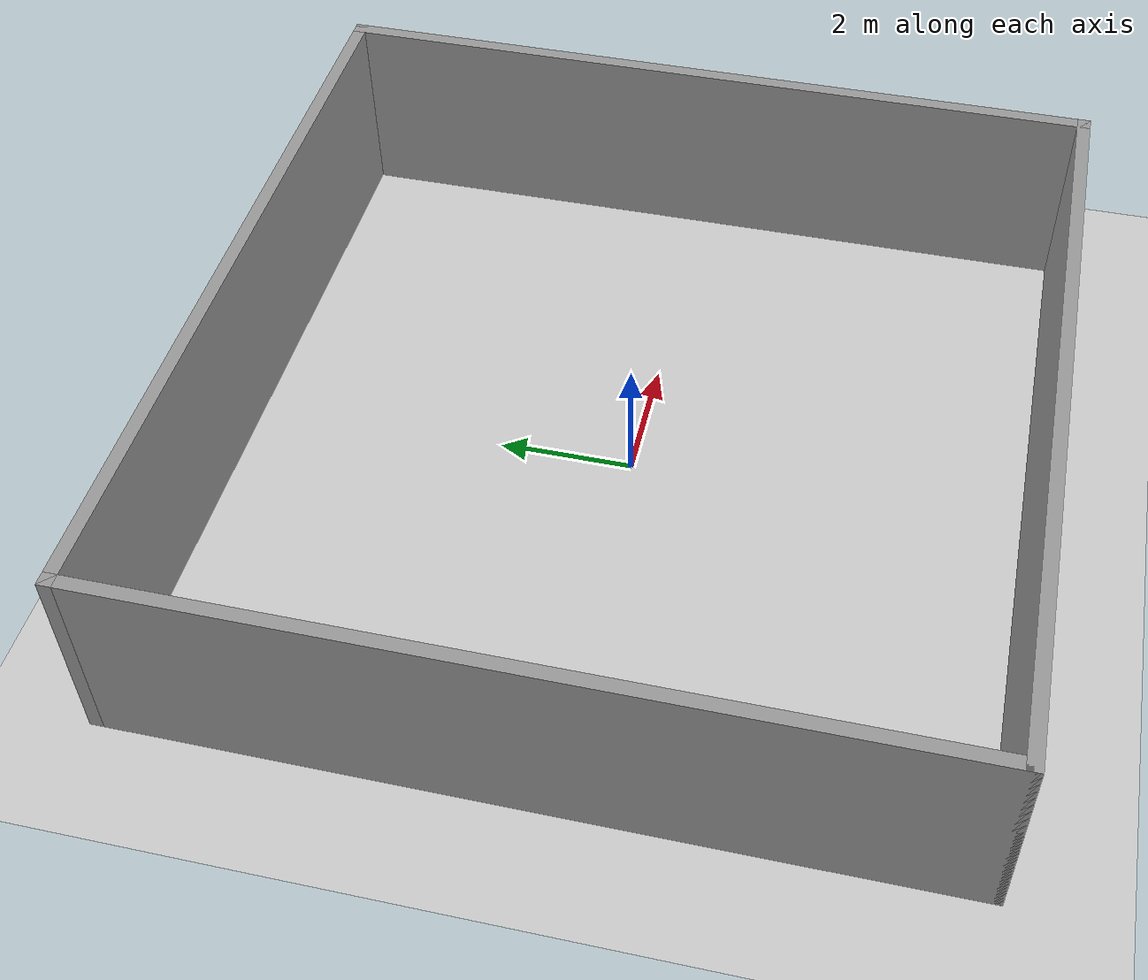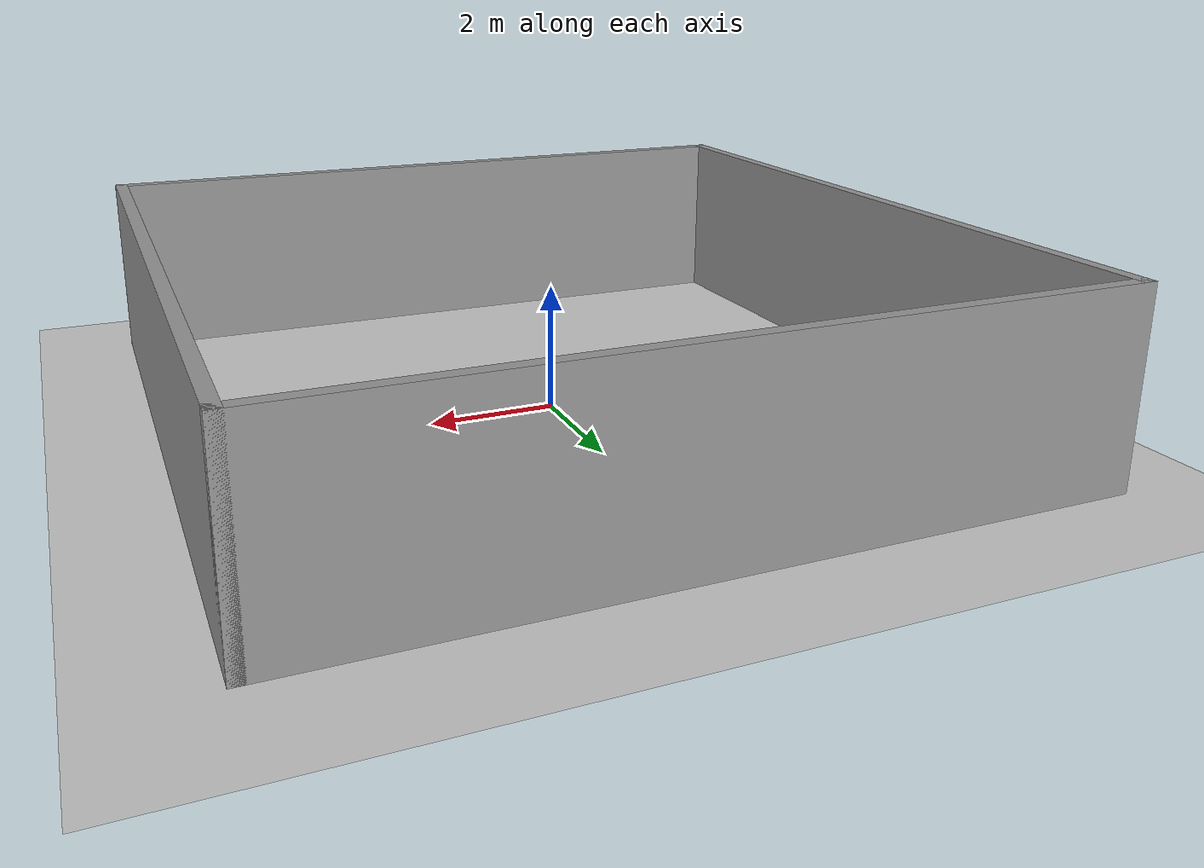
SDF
<sdf version="1.10">
 <world name="world_demo">
  <gravity>0 0 -9.8</gravity>
  <physics name="1ms" type="ignored">
   <max_step_size>0.001</max_step_size>
   <real_time_factor>1</real_time_factor>
   <real_time_update_rate>1000</real_time_update_rate>
  </physics>
  <plugin name="gz::sim::systems::Physics" filename="gz-sim-physics-system"/>
  <plugin name="gz::sim::systems::UserCommands" filename="gz-sim-user-commands-system"/>
  <plugin name="gz::sim::systems::SceneBroadcaster" filename="gz-sim-scene-broadcaster-system"/>
  <plugin name="gz::sim::systems::Contact" filename="gz-sim-contact-system"/>
  <scene><ambient>0.4 0.4 0.4 1</ambient><background>0.7 0.7 0.7 1</background><shadows>true</shadows></scene>
  <light name="sun" type="directional">
   <pose>0 0 10 0 0 0</pose>
   <intensity>1</intensity>
   <direction>-0.5 0.1 -0.9</direction>
   <diffuse>0.8 0.8 0.8 1</diffuse>
   <specular>0.2 0.2 0.2 1</specular>
   <attenuation>
    <range>1000</range>
    <linear>0.01</linear>
    <constant>0.9</constant>
    <quadratic>0.001</quadratic>
   </attenuation>
   <spot><inner_angle>0</inner_angle><outer_angle>0</outer_angle><falloff>0</falloff></spot>
  </light>
  <model name="ground_plane">
   <static>true</static>
   <link name="link">
    <collision name="collision">
     <geometry><plane><normal>0 0 1</normal><size>12 12</size></plane></geometry>
    </collision>
    <visual name="visual">
     <geometry><plane><normal>0 0 1</normal><size>12 12</size></plane></geometry>
     <material>
      <ambient>0.8 0.8 0.8 1</ambient>
      <diffuse>0.8 0.8 0.8 1</diffuse>
      <specular>0.8 0.8 0.8 1</specular>
     </material>
    </visual>
    <inertial>
     <mass>1</mass>
     <inertia><ixx>1</ixx><ixy>0</ixy><ixz>0</ixz><iyy>1</iyy><iyz>0</iyz><izz>1</izz></inertia>
    </inertial>
   </link>
  </model>
  <model name="wall_north">
   <static>true</static>
   <link name="link">
    <collision name="collision"><geometry><box><size>12 0.2 3</size></box></geometry></collision>
    <visual name="visual">
     <geometry><box><size>12 0.2 3</size></box></geometry>
     <material>
      <ambient>0.6 0.6 0.6 1</ambient>
      <diffuse>0.6 0.6 0.6 1</diffuse>
      <specular>0.6 0.6 0.6 1</specular>
     </material>
    </visual>
    <inertial>
     <mass>1</mass>
     <inertia><ixx>1</ixx><ixy>0</ixy><ixz>0</ixz><iyy>1</iyy><iyz>0</iyz><izz>1</izz></inertia>
    </inertial>
   </link>
   <pose>0 5.9 1.5 0 0 0</pose>
  </model>
  <model name="wall_south">
   <static>true</static>
   <link name="link">
    <collision name="collision"><geometry><box><size>12 0.2 3</size></box></geometry></collision>
    <visual name="visual">
     <geometry><box><size>12 0.2 3</size></box></geometry>
     <material>
      <ambient>0.6 0.6 0.6 1</ambient>
      <diffuse>0.6 0.6 0.6 1</diffuse>
      <specular>0.6 0.6 0.6 1</specular>
     </material>
    </visual>
    <inertial>
     <mass>1</mass>
     <inertia><ixx>1</ixx><ixy>0</ixy><ixz>0</ixz><iyy>1</iyy><iyz>0</iyz><izz>1</izz></inertia>
    </inertial>
   </link>
   <pose>0 -5.9 1.5 0 0 0</pose>
  </model>
  <model name="wall_east">
   <static>true</static>
   <link name="link">
    <collision name="collision"><geometry><box><size>0.2 12 3</size></box></geometry></collision>
    <visual name="visual">
     <geometry><box><size>0.2 12 3</size></box></geometry>
     <material>
      <ambient>0.6 0.6 0.6 1</ambient>
      <diffuse>0.6 0.6 0.6 1</diffuse>
      <specular>0.6 0.6 0.6 1</specular>
     </material>
    </visual>
    <inertial>
     <mass>1</mass>
     <inertia><ixx>1</ixx><ixy>0</ixy><ixz>0</ixz><iyy>1</iyy><iyz>0</iyz><izz>1</izz></inertia>
    </inertial>
   </link>
   <pose>5.9 0 1.5 0 0 0</pose>
  </model>
  <model name="wall_west">
   <static>true</static>
   <link name="link">
    <collision name="collision"><geometry><box><size>0.2 12 3</size></box></geometry></collision>
    <visual name="visual">
     <geometry><box><size>0.2 12 3</size></box></geometry>
     <material>
      <ambient>0.6 0.6 0.6 1</ambient>
      <diffuse>0.6 0.6 0.6 1</diffuse>
      <specular>0.6 0.6 0.6 1</specular>
     </material>
    </visual>
    <inertial>
     <mass>1</mass>
     <inertia><ixx>1</ixx><ixy>0</ixy><ixz>0</ixz><iyy>1</iyy><iyz>0</iyz><izz>1</izz></inertia>
    </inertial>
   </link>
   <pose>-5.9 0 1.5 0 0 0</pose>
  </model>
 </world>
</sdf>
